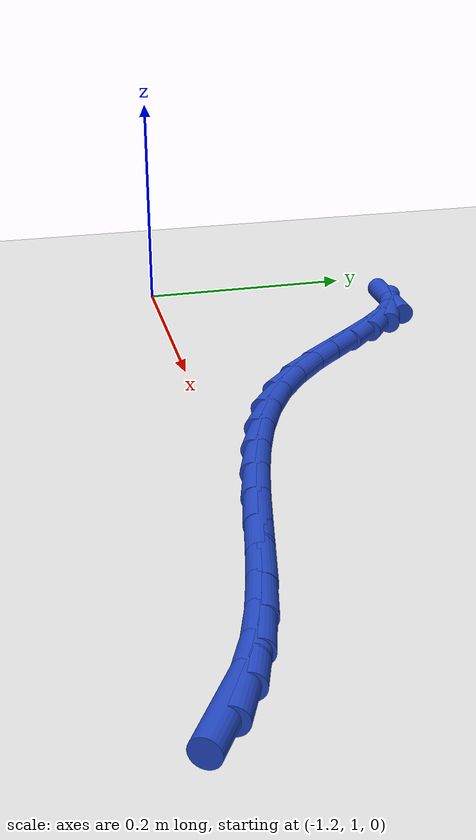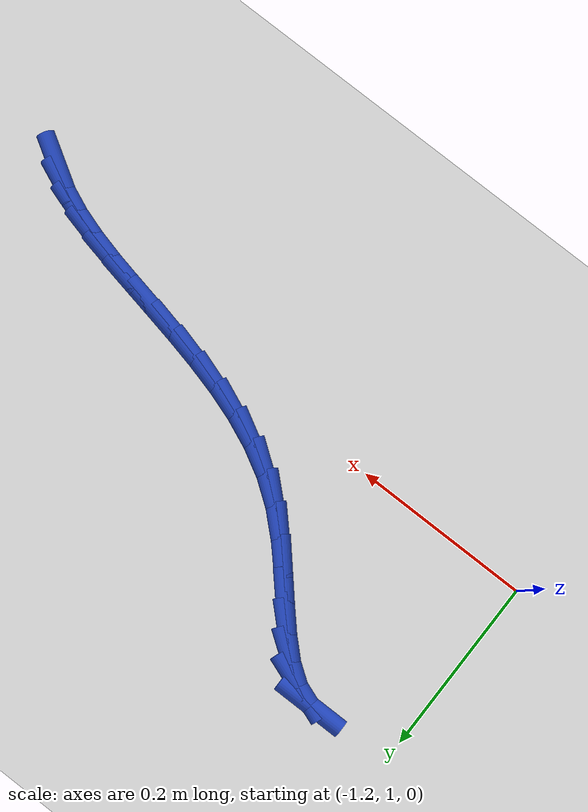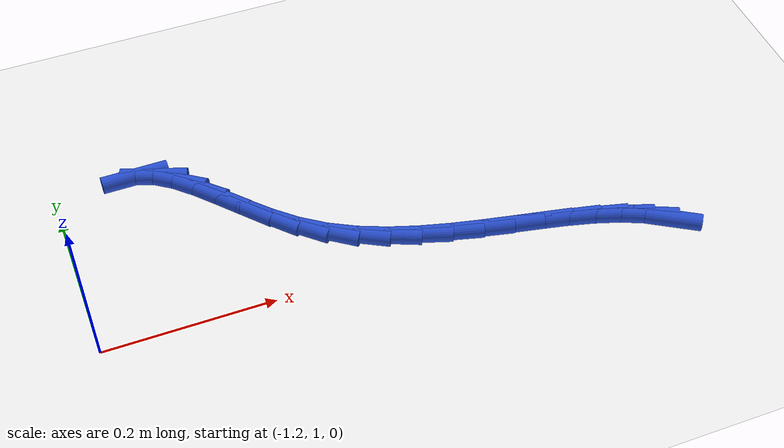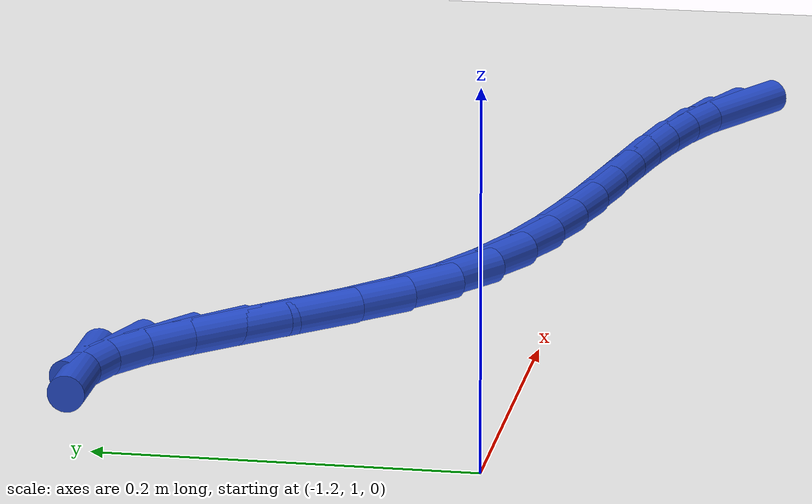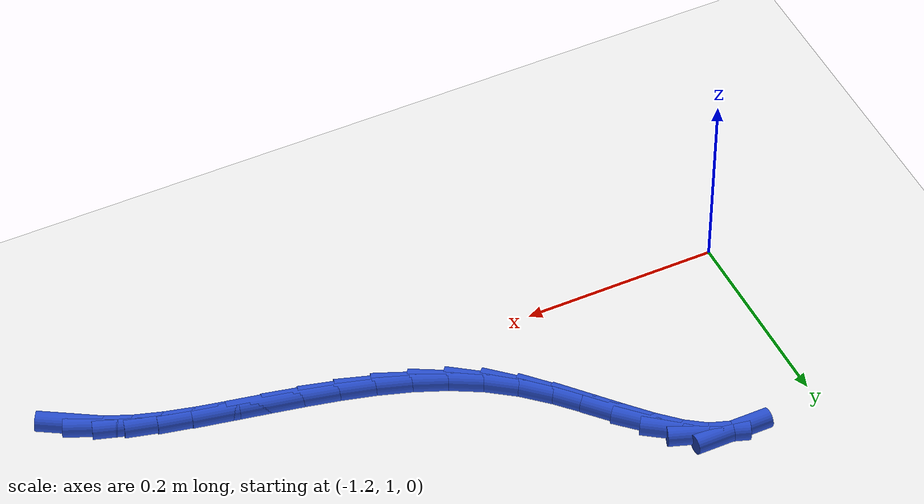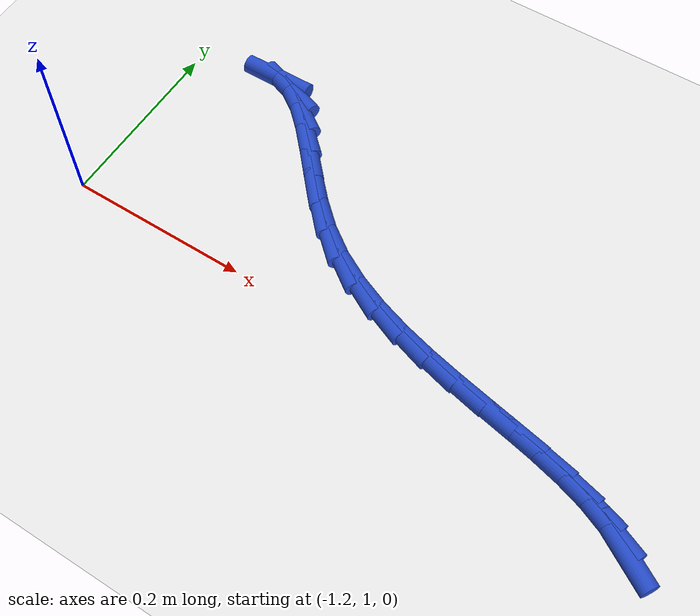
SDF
<sdf version="1.6">
 <world name="default">
  <model name="ground_plane">
   <static>1</static>
   <link name="link">
    <collision name="collision">
     <geometry><plane><normal>0 0 1</normal><size>100 100</size></plane></geometry>
     <surface><friction><ode><mu>100</mu><mu2>50</mu2></ode></friction></surface>
    </collision>
    <visual name="visual">
     <cast_shadows>0</cast_shadows>
     <geometry><plane><normal>0 0 1</normal><size>100 100</size></plane></geometry>
     <material>
      <script><uri>file://media/materials/scripts/gazebo.material</uri><name>Gazebo/WhiteGlow</name></script>
     </material>
    </visual>
   </link>
  </model>
  <model name="line">
   <link name="link_38">
    <pose>-0.5433939909714063 0.9458143656067095 0.01 0 1.57 -0.5464046418848033</pose>
    <collision name="collision">
     <geometry><cylinder><radius>0.01</radius><length>0.08</length></cylinder></geometry>
    </collision>
    <visual name="visual">
     <material>
      <script><name>Gazebo/Blue</name><uri>file://media/materials/scripts/gazebo.material</uri></script>
     </material>
     <geometry><cylinder><radius>0.01</radius><length>0.08</length></cylinder></geometry>
    </visual>
   </link>
   <link name="link_39">
    <pose>-0.5657886610196561 0.9594341147683023 0.01 0 1.57 -0.4076632303359125</pose>
    <collision name="collision">
     <geometry><cylinder><radius>0.01</radius><length>0.08</length></cylinder></geometry>
    </collision>
    <visual name="visual">
     <material>
      <script><name>Gazebo/Blue</name><uri>file://media/materials/scripts/gazebo.material</uri></script>
     </material>
     <geometry><cylinder><radius>0.01</radius><length>0.08</length></cylinder></geometry>
    </visual>
   </link>
   <link name="link_40">
    <pose>-0.5915191709997935 0.9705459853282066 0.01 0 1.57 -0.3105630101603938</pose>
    <collision name="collision">
     <geometry><cylinder><radius>0.01</radius><length>0.08</length></cylinder></geometry>
    </collision>
    <visual name="visual">
     <material>
      <script><name>Gazebo/Blue</name><uri>file://media/materials/scripts/gazebo.material</uri></script>
     </material>
     <geometry><cylinder><radius>0.01</radius><length>0.08</length></cylinder></geometry>
    </visual>
   </link>
   <link name="link_41">
    <pose>-0.6200675896276278 0.9797085545405383 0.01 0 1.57 -0.2468006692864018</pose>
    <collision name="collision">
     <geometry><cylinder><radius>0.01</radius><length>0.08</length></cylinder></geometry>
    </collision>
    <visual name="visual">
     <material>
      <script><name>Gazebo/Blue</name><uri>file://media/materials/scripts/gazebo.material</uri></script>
     </material>
     <geometry><cylinder><radius>0.01</radius><length>0.08</length></cylinder></geometry>
    </visual>
   </link>
   <link name="link_42">
    <pose>-0.6509159856189676 0.9874803996594139 0.01 0 1.57 -0.20955338351126954</pose>
    <collision name="collision">
     <geometry><cylinder><radius>0.01</radius><length>0.08</length></cylinder></geometry>
    </collision>
    <visual name="visual">
     <material>
      <script><name>Gazebo/Blue</name><uri>file://media/materials/scripts/gazebo.material</uri></script>
     </material>
     <geometry><cylinder><radius>0.01</radius><length>0.08</length></cylinder></geometry>
    </visual>
   </link>
   <link name="link_43">
    <pose>-0.6835464276896216 0.9944200979389499 0.01 0 1.57 -0.19419404430804402</pose>
    <collision name="collision">
     <geometry><cylinder><radius>0.01</radius><length>0.08</length></cylinder></geometry>
    </collision>
    <visual name="visual">
     <material>
      <script><name>Gazebo/Blue</name><uri>file://media/materials/scripts/gazebo.material</uri></script>
     </material>
     <geometry><cylinder><radius>0.01</radius><length>0.08</length></cylinder></geometry>
    </visual>
   </link>
   <link name="link_44">
    <pose>-0.7174409845553988 1.0010862266332623 0.01 0 1.57 -0.19803357448685469</pose>
    <collision name="collision">
     <geometry><cylinder><radius>0.01</radius><length>0.08</length></cylinder></geometry>
    </collision>
    <visual name="visual">
     <material>
      <script><name>Gazebo/Blue</name><uri>file://media/materials/scripts/gazebo.material</uri></script>
     </material>
     <geometry><cylinder><radius>0.01</radius><length>0.08</length></cylinder></geometry>
    </visual>
   </link>
   <link name="link_45">
    <pose>-0.7520817249321085 1.008037362996468 0.01 0 1.57 -0.2199272734205374</pose>
    <collision name="collision">
     <geometry><cylinder><radius>0.01</radius><length>0.08</length></cylinder></geometry>
    </collision>
    <visual name="visual">
     <material>
      <script><name>Gazebo/Blue</name><uri>file://media/materials/scripts/gazebo.material</uri></script>
     </material>
     <geometry><cylinder><radius>0.01</radius><length>0.08</length></cylinder></geometry>
    </visual>
   </link>
   <link name="link_46">
    <pose>-0.786950717535559 1.0158320842826831 0.01 0 1.57 -0.25994709544081346</pose>
    <collision name="collision">
     <geometry><cylinder><radius>0.01</radius><length>0.08</length></cylinder></geometry>
    </collision>
    <visual name="visual">
     <material>
      <script><name>Gazebo/Blue</name><uri>file://media/materials/scripts/gazebo.material</uri></script>
     </material>
     <geometry><cylinder><radius>0.01</radius><length>0.08</length></cylinder></geometry>
    </visual>
   </link>
   <link name="link_47">
    <pose>-0.8215300310815592 1.0250289677460234 0.01 0 1.57 -0.3190936098132388</pose>
    <collision name="collision">
     <geometry><cylinder><radius>0.01</radius><length>0.08</length></cylinder></geometry>
    </collision>
    <visual name="visual">
     <material>
      <script><name>Gazebo/Blue</name><uri>file://media/materials/scripts/gazebo.material</uri></script>
     </material>
     <geometry><cylinder><radius>0.01</radius><length>0.08</length></cylinder></geometry>
    </visual>
   </link>
   <link name="link_48">
    <pose>-0.8553017342859186 1.0361865906406065 0.01 0 1.57 -0.3989254796417109</pose>
    <collision name="collision">
     <geometry><cylinder><radius>0.01</radius><length>0.08</length></cylinder></geometry>
    </collision>
    <visual name="visual">
     <material>
      <script><name>Gazebo/Blue</name><uri>file://media/materials/scripts/gazebo.material</uri></script>
     </material>
     <geometry><cylinder><radius>0.01</radius><length>0.08</length></cylinder></geometry>
    </visual>
   </link>
   <link name="link_49">
    <pose>-0.8877478958644448 1.0498635302205472 0.01 0 1.57 -0.5009183164603683</pose>
    <collision name="collision">
     <geometry><cylinder><radius>0.01</radius><length>0.08</length></cylinder></geometry>
    </collision>
    <visual name="visual">
     <material>
      <script><name>Gazebo/Blue</name><uri>file://media/materials/scripts/gazebo.material</uri></script>
     </material>
     <geometry><cylinder><radius>0.01</radius><length>0.08</length></cylinder></geometry>
    </visual>
   </link>
   <link name="link_50">
    <pose>-0.9183505845329478 1.066618363739963 0.01 0 1.57 -0.6248203007541467</pose>
    <collision name="collision">
     <geometry><cylinder><radius>0.01</radius><length>0.08</length></cylinder></geometry>
    </collision>
    <visual name="visual">
     <material>
      <script><name>Gazebo/Blue</name><uri>file://media/materials/scripts/gazebo.material</uri></script>
     </material>
     <geometry><cylinder><radius>0.01</radius><length>0.08</length></cylinder></geometry>
    </visual>
   </link>
   <link name="link_51">
    <pose>-0.9465997767773 1.0869919986101606 0.01 0 1.57 -0.7422120311775847</pose>
    <collision name="collision">
     <geometry><cylinder><radius>0.01</radius><length>0.08</length></cylinder></geometry>
    </collision>
    <visual name="visual">
     <material>
      <script><name>Gazebo/Blue</name><uri>file://media/materials/scripts/gazebo.material</uri></script>
     </material>
     <geometry><cylinder><radius>0.01</radius><length>0.08</length></cylinder></geometry>
    </visual>
   </link>
   <link name="link_52">
    <pose>-0.9723823123274653 1.110638554806441 0.01 0 1.57 -0.8162339817513774</pose>
    <collision name="collision">
     <geometry><cylinder><radius>0.01</radius><length>0.08</length></cylinder></geometry>
    </collision>
    <visual name="visual">
     <material>
      <script><name>Gazebo/Blue</name><uri>file://media/materials/scripts/gazebo.material</uri></script>
     </material>
     <geometry><cylinder><radius>0.01</radius><length>0.08</length></cylinder></geometry>
    </visual>
   </link>
   <link name="link_53">
    <pose>-0.9961592680435642 1.1359290244763327 0.01 0 1.57 -0.8469782176786365</pose>
    <collision name="collision">
     <geometry><cylinder><radius>0.01</radius><length>0.08</length></cylinder></geometry>
    </collision>
    <visual name="visual">
     <material>
      <script><name>Gazebo/Blue</name><uri>file://media/materials/scripts/gazebo.material</uri></script>
     </material>
     <geometry><cylinder><radius>0.01</radius><length>0.08</length></cylinder></geometry>
    </visual>
   </link>
   <link name="link_54">
    <pose>-1.0184366282421053 1.16113405445018 0.01 0 1.57 -0.8325157192100264</pose>
    <collision name="collision">
     <geometry><cylinder><radius>0.01</radius><length>0.08</length></cylinder></geometry>
    </collision>
    <visual name="visual">
     <material>
      <script><name>Gazebo/Blue</name><uri>file://media/materials/scripts/gazebo.material</uri></script>
     </material>
     <geometry><cylinder><radius>0.01</radius><length>0.08</length></cylinder></geometry>
    </visual>
   </link>
   <link name="link_55">
    <pose>-1.0397203772395969 1.1845242915583254 0.01 0 1.57 -0.762026944508734</pose>
    <collision name="collision">
     <geometry><cylinder><radius>0.01</radius><length>0.08</length></cylinder></geometry>
    </collision>
    <visual name="visual">
     <material>
      <script><name>Gazebo/Blue</name><uri>file://media/materials/scripts/gazebo.material</uri></script>
     </material>
     <geometry><cylinder><radius>0.01</radius><length>0.08</length></cylinder></geometry>
    </visual>
   </link>
   <link name="link_56">
    <pose>-1.0605164993525467 1.2043703826311127 0.01 0 1.57 -0.6108051571364453</pose>
    <collision name="collision">
     <geometry><cylinder><radius>0.01</radius><length>0.08</length></cylinder></geometry>
    </collision>
    <visual name="visual">
     <material>
      <script><name>Gazebo/Blue</name><uri>file://media/materials/scripts/gazebo.material</uri></script>
     </material>
     <geometry><cylinder><radius>0.01</radius><length>0.08</length></cylinder></geometry>
    </visual>
   </link>
   <link name="link_57">
    <pose>-1.0813309788974639 1.2189429744988864 0.01 0 1.57 -0.3414604962938436</pose>
    <collision name="collision">
     <geometry><cylinder><radius>0.01</radius><length>0.08</length></cylinder></geometry>
    </collision>
    <visual name="visual">
     <material>
      <script><name>Gazebo/Blue</name><uri>file://media/materials/scripts/gazebo.material</uri></script>
     </material>
     <geometry><cylinder><radius>0.01</radius><length>0.08</length></cylinder></geometry>
    </visual>
   </link>
   <link name="link_58">
    <pose>-1.1026678229862463 1.226525682986013 0.01 0 1.57 0.003880813868161539</pose>
    <collision name="collision">
     <geometry><cylinder><radius>0.01</radius><length>0.08</length></cylinder></geometry>
    </collision>
    <visual name="visual">
     <material>
      <script><name>Gazebo/Blue</name><uri>file://media/materials/scripts/gazebo.material</uri></script>
     </material>
     <geometry><cylinder><radius>0.01</radius><length>0.08</length></cylinder></geometry>
    </visual>
   </link>
  </model>
 </world>
</sdf>
